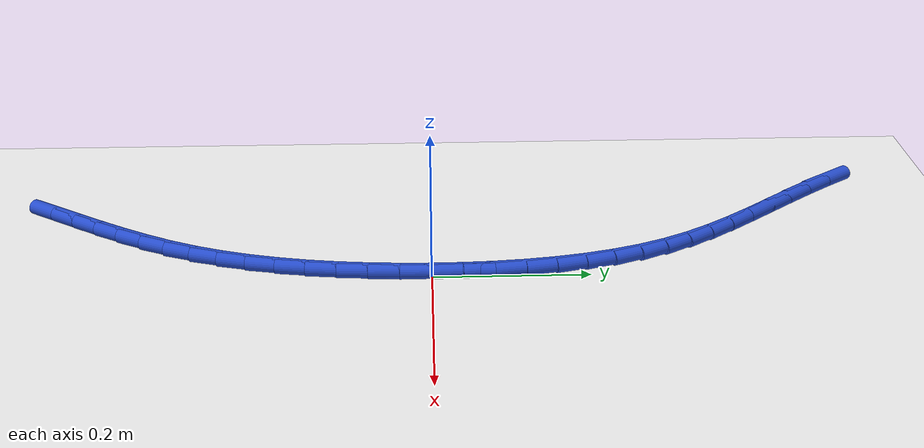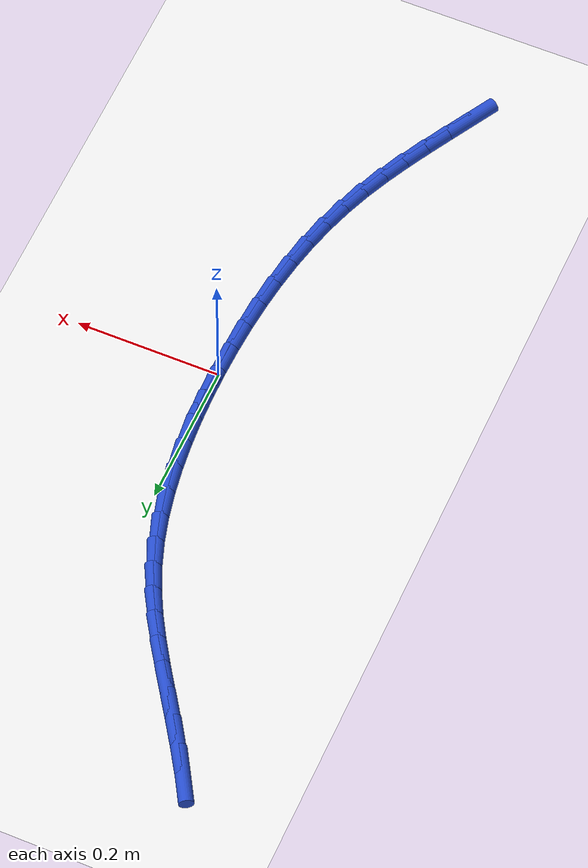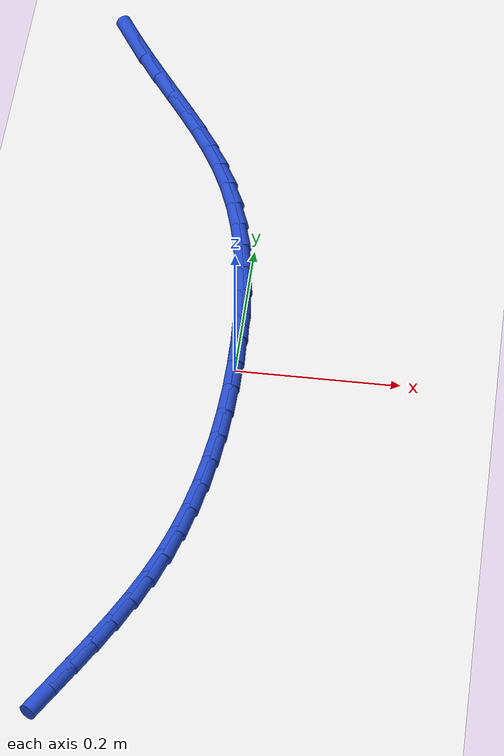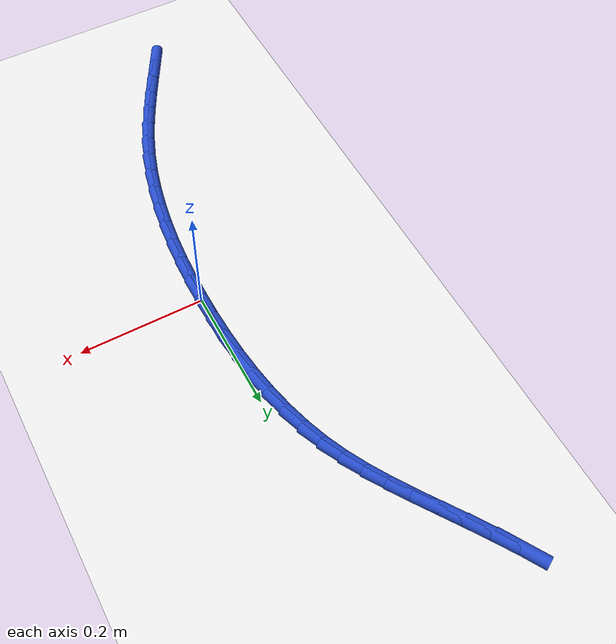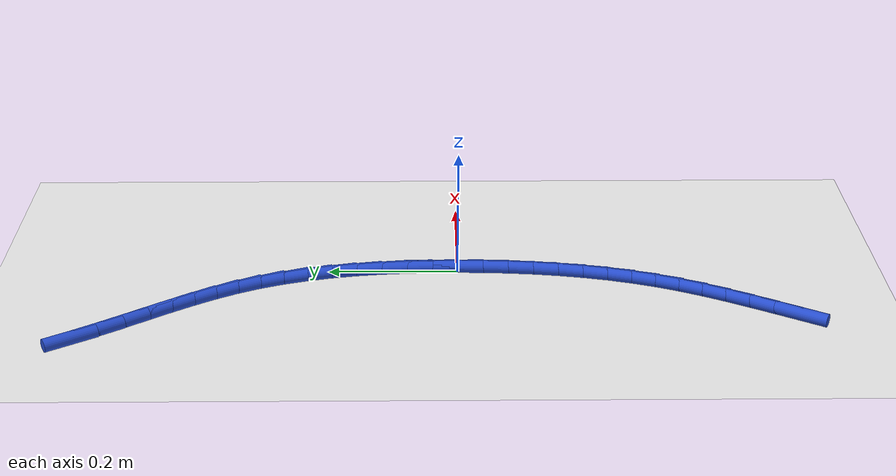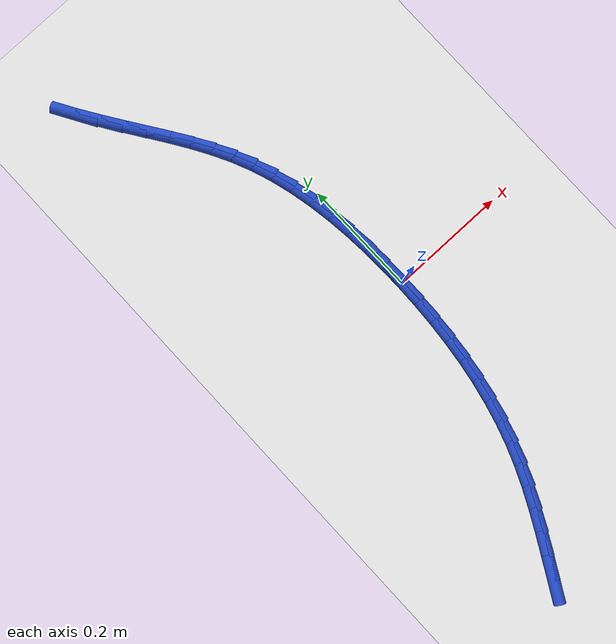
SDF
<sdf version="1.6">
 <world name="default">
  <model name="ground_plane">
   <static>1</static>
   <link name="link">
    <collision name="collision">
     <geometry><plane><normal>0 0 1</normal><size>100 100</size></plane></geometry>
     <surface><friction><ode><mu>100</mu><mu2>50</mu2></ode></friction></surface>
    </collision>
    <visual name="visual">
     <cast_shadows>0</cast_shadows>
     <geometry><plane><normal>0 0 1</normal><size>100 100</size></plane></geometry>
     <material>
      <script><uri>file://media/materials/scripts/gazebo.material</uri><name>Gazebo/WhiteGlow</name></script>
     </material>
    </visual>
   </link>
  </model>
  <model name="line">
   <link name="link_0">
    <pose>-1.734723475976807e-18 -6.938893903907228e-17 0.01 0 1.57 -1.563096844219705</pose>
    <collision name="collision">
     <geometry><cylinder><radius>0.01</radius><length>0.08</length></cylinder></geometry>
    </collision>
    <visual name="visual">
     <material>
      <script><name>Gazebo/Blue</name><uri>file://media/materials/scripts/gazebo.material</uri></script>
     </material>
     <geometry><cylinder><radius>0.01</radius><length>0.08</length></cylinder></geometry>
    </visual>
   </link>
   <link name="link_1">
    <pose>-0.0003049578047452605 0.03960678858229409 0.01 0 1.57 -1.530554185920481</pose>
    <collision name="collision">
     <geometry><cylinder><radius>0.01</radius><length>0.08</length></cylinder></geometry>
    </collision>
    <visual name="visual">
     <material>
      <script><name>Gazebo/Blue</name><uri>file://media/materials/scripts/gazebo.material</uri></script>
     </material>
     <geometry><cylinder><radius>0.01</radius><length>0.08</length></cylinder></geometry>
    </visual>
   </link>
   <link name="link_2">
    <pose>-0.0018966604278241087 0.07913856494392668 0.01 0 1.57 -1.49403480154103</pose>
    <collision name="collision">
     <geometry><cylinder><radius>0.01</radius><length>0.08</length></cylinder></geometry>
    </collision>
    <visual name="visual">
     <material>
      <script><name>Gazebo/Blue</name><uri>file://media/materials/scripts/gazebo.material</uri></script>
     </material>
     <geometry><cylinder><radius>0.01</radius><length>0.08</length></cylinder></geometry>
    </visual>
   </link>
   <link name="link_3">
    <pose>-0.004914437785738147 0.11837498930932815 0.01 0 1.57 -1.452979437839179</pose>
    <collision name="collision">
     <geometry><cylinder><radius>0.01</radius><length>0.08</length></cylinder></geometry>
    </collision>
    <visual name="visual">
     <material>
      <script><name>Gazebo/Blue</name><uri>file://media/materials/scripts/gazebo.material</uri></script>
     </material>
     <geometry><cylinder><radius>0.01</radius><length>0.08</length></cylinder></geometry>
    </visual>
   </link>
   <link name="link_4">
    <pose>-0.009497619794988981 0.157095721902929 0.01 0 1.57 -1.40674588054292</pose>
    <collision name="collision">
     <geometry><cylinder><radius>0.01</radius><length>0.08</length></cylinder></geometry>
    </collision>
    <visual name="visual">
     <material>
      <script><name>Gazebo/Blue</name><uri>file://media/materials/scripts/gazebo.material</uri></script>
     </material>
     <geometry><cylinder><radius>0.01</radius><length>0.08</length></cylinder></geometry>
    </visual>
   </link>
   <link name="link_5">
    <pose>-0.0157855363720782 0.19508042294915962 0.01 0 1.57 -1.354613163608315</pose>
    <collision name="collision">
     <geometry><cylinder><radius>0.01</radius><length>0.08</length></cylinder></geometry>
    </collision>
    <visual name="visual">
     <material>
      <script><name>Gazebo/Blue</name><uri>file://media/materials/scripts/gazebo.material</uri></script>
     </material>
     <geometry><cylinder><radius>0.01</radius><length>0.08</length></cylinder></geometry>
    </visual>
   </link>
   <link name="link_6">
    <pose>-0.02391751743350742 0.23210875267245074 0.01 0 1.57 -1.2957991453305557</pose>
    <collision name="collision">
     <geometry><cylinder><radius>0.01</radius><length>0.08</length></cylinder></geometry>
    </collision>
    <visual name="visual">
     <material>
      <script><name>Gazebo/Blue</name><uri>file://media/materials/scripts/gazebo.material</uri></script>
     </material>
     <geometry><cylinder><radius>0.01</radius><length>0.08</length></cylinder></geometry>
    </visual>
   </link>
   <link name="link_7">
    <pose>-0.03403289289577824 0.2679603712972326 0.01 0 1.57 -1.229500715353914</pose>
    <collision name="collision">
     <geometry><cylinder><radius>0.01</radius><length>0.08</length></cylinder></geometry>
    </collision>
    <visual name="visual">
     <material>
      <script><name>Gazebo/Blue</name><uri>file://media/materials/scripts/gazebo.material</uri></script>
     </material>
     <geometry><cylinder><radius>0.01</radius><length>0.08</length></cylinder></geometry>
    </visual>
   </link>
   <link name="link_8">
    <pose>-0.04627099267539225 0.30241493904793587 0.01 0 1.57 -1.15666936004901</pose>
    <collision name="collision">
     <geometry><cylinder><radius>0.01</radius><length>0.08</length></cylinder></geometry>
    </collision>
    <visual name="visual">
     <material>
      <script><name>Gazebo/Blue</name><uri>file://media/materials/scripts/gazebo.material</uri></script>
     </material>
     <geometry><cylinder><radius>0.01</radius><length>0.08</length></cylinder></geometry>
    </visual>
   </link>
   <link name="link_9">
    <pose>-0.06073254444390269 0.33531600388133 0.01 0 1.57 -1.0902655378315615</pose>
    <collision name="collision">
     <geometry><cylinder><radius>0.01</radius><length>0.08</length></cylinder></geometry>
    </collision>
    <visual name="visual">
     <material>
      <script><name>Gazebo/Blue</name><uri>file://media/materials/scripts/gazebo.material</uri></script>
     </material>
     <geometry><cylinder><radius>0.01</radius><length>0.08</length></cylinder></geometry>
    </visual>
   </link>
   <link name="link_10">
    <pose>-0.07723576086874107 0.36697468352867046 0.01 0 1.57 -1.0381031123624456</pose>
    <collision name="collision">
     <geometry><cylinder><radius>0.01</radius><length>0.08</length></cylinder></geometry>
    </collision>
    <visual name="visual">
     <material>
      <script><name>Gazebo/Blue</name><uri>file://media/materials/scripts/gazebo.material</uri></script>
     </material>
     <geometry><cylinder><radius>0.01</radius><length>0.08</length></cylinder></geometry>
    </visual>
   </link>
   <link name="link_11">
    <pose>-0.0954733101461299 0.3979098751284458 0.01 0 1.57 -1.0015802505360922</pose>
    <collision name="collision">
     <geometry><cylinder><radius>0.01</radius><length>0.08</length></cylinder></geometry>
    </collision>
    <visual name="visual">
     <material>
      <script><name>Gazebo/Blue</name><uri>file://media/materials/scripts/gazebo.material</uri></script>
     </material>
     <geometry><cylinder><radius>0.01</radius><length>0.08</length></cylinder></geometry>
    </visual>
   </link>
   <link name="link_12">
    <pose>-0.11513729105276577 0.4286414182234618 0.01 0 1.57 -0.9809225280966541</pose>
    <collision name="collision">
     <geometry><cylinder><radius>0.01</radius><length>0.08</length></cylinder></geometry>
    </collision>
    <visual name="visual">
     <material>
      <script><name>Gazebo/Blue</name><uri>file://media/materials/scripts/gazebo.material</uri></script>
     </material>
     <geometry><cylinder><radius>0.01</radius><length>0.08</length></cylinder></geometry>
    </visual>
   </link>
   <link name="link_13">
    <pose>-0.13591980236534504 0.45968915235652397 0.01 0 1.57 -0.9755055367433808</pose>
    <collision name="collision">
     <geometry><cylinder><radius>0.01</radius><length>0.08</length></cylinder></geometry>
    </collision>
    <visual name="visual">
     <material>
      <script><name>Gazebo/Blue</name><uri>file://media/materials/scripts/gazebo.material</uri></script>
     </material>
     <geometry><cylinder><radius>0.01</radius><length>0.08</length></cylinder></geometry>
    </visual>
   </link>
   <link name="link_14">
    <pose>-0.1575129428605643 0.49157291707043804 0.01 0 1.57 -0.9841255510834079</pose>
    <collision name="collision">
     <geometry><cylinder><radius>0.01</radius><length>0.08</length></cylinder></geometry>
    </collision>
    <visual name="visual">
     <material>
      <script><name>Gazebo/Blue</name><uri>file://media/materials/scripts/gazebo.material</uri></script>
     </material>
     <geometry><cylinder><radius>0.01</radius><length>0.08</length></cylinder></geometry>
    </visual>
   </link>
   <link name="link_15">
    <pose>-0.17960881131511974 0.5248125519080092 0.01 0 1.57 -1.005191505480395</pose>
    <collision name="collision">
     <geometry><cylinder><radius>0.01</radius><length>0.08</length></cylinder></geometry>
    </collision>
    <visual name="visual">
     <material>
      <script><name>Gazebo/Blue</name><uri>file://media/materials/scripts/gazebo.material</uri></script>
     </material>
     <geometry><cylinder><radius>0.01</radius><length>0.08</length></cylinder></geometry>
    </visual>
   </link>
   <link name="link_16">
    <pose>-0.2018995065057081 0.5599278964120434 0.01 0 1.57 -1.0368095923707983</pose>
    <collision name="collision">
     <geometry><cylinder><radius>0.01</radius><length>0.08</length></cylinder></geometry>
    </collision>
    <visual name="visual">
     <material>
      <script><name>Gazebo/Blue</name><uri>file://media/materials/scripts/gazebo.material</uri></script>
     </material>
     <geometry><cylinder><radius>0.01</radius><length>0.08</length></cylinder></geometry>
    </visual>
   </link>
   <link name="link_186">
    <pose>-0.14504663464573622 -0.502633102756109 0.01 0 1.57 1.0618691015402344</pose>
    <collision name="collision">
     <geometry><cylinder><radius>0.01</radius><length>0.08</length></cylinder></geometry>
    </collision>
    <visual name="visual">
     <material>
      <script><name>Gazebo/Blue</name><uri>file://media/materials/scripts/gazebo.material</uri></script>
     </material>
     <geometry><cylinder><radius>0.01</radius><length>0.08</length></cylinder></geometry>
    </visual>
   </link>
   <link name="link_187">
    <pose>-0.12623511873366658 -0.4689177560123944 0.01 0 1.57 1.068311460264547</pose>
    <collision name="collision">
     <geometry><cylinder><radius>0.01</radius><length>0.08</length></cylinder></geometry>
    </collision>
    <visual name="visual">
     <material>
      <script><name>Gazebo/Blue</name><uri>file://media/materials/scripts/gazebo.material</uri></script>
     </material>
     <geometry><cylinder><radius>0.01</radius><length>0.08</length></cylinder></geometry>
    </visual>
   </link>
   <link name="link_188">
    <pose>-0.10802918071457823 -0.4357879412833241 0.01 0 1.57 1.085658212172565</pose>
    <collision name="collision">
     <geometry><cylinder><radius>0.01</radius><length>0.08</length></cylinder></geometry>
    </collision>
    <visual name="visual">
     <material>
      <script><name>Gazebo/Blue</name><uri>file://media/materials/scripts/gazebo.material</uri></script>
     </material>
     <geometry><cylinder><radius>0.01</radius><length>0.08</length></cylinder></geometry>
    </visual>
   </link>
   <link name="link_189">
    <pose>-0.09069042148572598 -0.4028970023901863 0.01 0 1.57 1.114188843921164</pose>
    <collision name="collision">
     <geometry><cylinder><radius>0.01</radius><length>0.08</length></cylinder></geometry>
    </collision>
    <visual name="visual">
     <material>
      <script><name>Gazebo/Blue</name><uri>file://media/materials/scripts/gazebo.material</uri></script>
     </material>
     <geometry><cylinder><radius>0.01</radius><length>0.08</length></cylinder></geometry>
    </visual>
   </link>
   <link name="link_190">
    <pose>-0.07448044194436453 -0.3698982831542688 0.01 0 1.57 1.1537825535583097</pose>
    <collision name="collision">
     <geometry><cylinder><radius>0.01</radius><length>0.08</length></cylinder></geometry>
    </collision>
    <visual name="visual">
     <material>
      <script><name>Gazebo/Blue</name><uri>file://media/materials/scripts/gazebo.material</uri></script>
     </material>
     <geometry><cylinder><radius>0.01</radius><length>0.08</length></cylinder></geometry>
    </visual>
   </link>
   <link name="link_191">
    <pose>-0.05966084298774871 -0.33644512739686 0.01 0 1.57 1.203785873123819</pose>
    <collision name="collision">
     <geometry><cylinder><radius>0.01</radius><length>0.08</length></cylinder></geometry>
    </collision>
    <visual name="visual">
     <material>
      <script><name>Gazebo/Blue</name><uri>file://media/materials/scripts/gazebo.material</uri></script>
     </material>
     <geometry><cylinder><radius>0.01</radius><length>0.08</length></cylinder></geometry>
    </visual>
   </link>
   <link name="link_192">
    <pose>-0.04649278143593838 -0.3021914654044959 0.01 0 1.57 1.2593820607485455</pose>
    <collision name="collision">
     <geometry><cylinder><radius>0.01</radius><length>0.08</length></cylinder></geometry>
    </collision>
    <visual name="visual">
     <material>
      <script><name>Gazebo/Blue</name><uri>file://media/materials/scripts/gazebo.material</uri></script>
     </material>
     <geometry><cylinder><radius>0.01</radius><length>0.08</length></cylinder></geometry>
    </visual>
   </link>
   <link name="link_193">
    <pose>-0.03513950486268177 -0.2669205301411953 0.01 0 1.57 1.3117800085713753</pose>
    <collision name="collision">
     <geometry><cylinder><radius>0.01</radius><length>0.08</length></cylinder></geometry>
    </collision>
    <visual name="visual">
     <material>
      <script><name>Gazebo/Blue</name><uri>file://media/materials/scripts/gazebo.material</uri></script>
     </material>
     <geometry><cylinder><radius>0.01</radius><length>0.08</length></cylinder></geometry>
    </visual>
   </link>
   <link name="link_194">
    <pose>-0.025543933886198085 -0.23070652673495337 0.01 0 1.57 1.3600323374821532</pose>
    <collision name="collision">
     <geometry><cylinder><radius>0.01</radius><length>0.08</length></cylinder></geometry>
    </collision>
    <visual name="visual">
     <material>
      <script><name>Gazebo/Blue</name><uri>file://media/materials/scripts/gazebo.material</uri></script>
     </material>
     <geometry><cylinder><radius>0.01</radius><length>0.08</length></cylinder></geometry>
    </visual>
   </link>
   <link name="link_195">
    <pose>-0.017618884121495763 -0.19366341812691756 0.01 0 1.57 1.404393730885358</pose>
    <collision name="collision">
     <geometry><cylinder><radius>0.01</radius><length>0.08</length></cylinder></geometry>
    </collision>
    <visual name="visual">
     <material>
      <script><name>Gazebo/Blue</name><uri>file://media/materials/scripts/gazebo.material</uri></script>
     </material>
     <geometry><cylinder><radius>0.01</radius><length>0.08</length></cylinder></geometry>
    </visual>
   </link>
   <link name="link_196">
    <pose>-0.01127717118358325 -0.1559051672582357 0.01 0 1.57 1.4451419217170527</pose>
    <collision name="collision">
     <geometry><cylinder><radius>0.01</radius><length>0.08</length></cylinder></geometry>
    </collision>
    <visual name="visual">
     <material>
      <script><name>Gazebo/Blue</name><uri>file://media/materials/scripts/gazebo.material</uri></script>
     </material>
     <geometry><cylinder><radius>0.01</radius><length>0.08</length></cylinder></geometry>
    </visual>
   </link>
   <link name="link_197">
    <pose>-0.00643161068746898 -0.11754573707005536 0.01 0 1.57 1.4825604173191216</pose>
    <collision name="collision">
     <geometry><cylinder><radius>0.01</radius><length>0.08</length></cylinder></geometry>
    </collision>
    <visual name="visual">
     <material>
      <script><name>Gazebo/Blue</name><uri>file://media/materials/scripts/gazebo.material</uri></script>
     </material>
     <geometry><cylinder><radius>0.01</radius><length>0.08</length></cylinder></geometry>
    </visual>
   </link>
   <link name="link_198">
    <pose>-0.0029950182481613876 -0.07869909050352418 0.01 0 1.57 1.5169266665333665</pose>
    <collision name="collision">
     <geometry><cylinder><radius>0.01</radius><length>0.08</length></cylinder></geometry>
    </collision>
    <visual name="visual">
     <material>
      <script><name>Gazebo/Blue</name><uri>file://media/materials/scripts/gazebo.material</uri></script>
     </material>
     <geometry><cylinder><radius>0.01</radius><length>0.08</length></cylinder></geometry>
    </visual>
   </link>
   <link name="link_199">
    <pose>-0.0008802094806689121 -0.039479190499789756 0.01 0 1.57 1.5485044898792815</pose>
    <collision name="collision">
     <geometry><cylinder><radius>0.01</radius><length>0.08</length></cylinder></geometry>
    </collision>
    <visual name="visual">
     <material>
      <script><name>Gazebo/Blue</name><uri>file://media/materials/scripts/gazebo.material</uri></script>
     </material>
     <geometry><cylinder><radius>0.01</radius><length>0.08</length></cylinder></geometry>
    </visual>
   </link>
   <link name="link_200">
    <pose>6.938893903907228e-18 2.0122792321330962e-16 0.01 0 1.57 -1.5640529925135638</pose>
    <collision name="collision">
     <geometry><cylinder><radius>0.01</radius><length>0.08</length></cylinder></geometry>
    </collision>
    <visual name="visual">
     <material>
      <script><name>Gazebo/Blue</name><uri>file://media/materials/scripts/gazebo.material</uri></script>
     </material>
     <geometry><cylinder><radius>0.01</radius><length>0.08</length></cylinder></geometry>
    </visual>
   </link>
   <link name="link_201">
    <pose>-0.0002672054211630831 0.03962451805469896 0.01 0 1.57 -1.564052992513564</pose>
    <collision name="collision">
     <geometry><cylinder><radius>0.01</radius><length>0.08</length></cylinder></geometry>
    </collision>
    <visual name="visual">
     <material>
      <script><name>Gazebo/Blue</name><uri>file://media/materials/scripts/gazebo.material</uri></script>
     </material>
     <geometry><cylinder><radius>0.01</radius><length>0.08</length></cylinder></geometry>
    </visual>
   </link>
  </model>
 </world>
</sdf>
